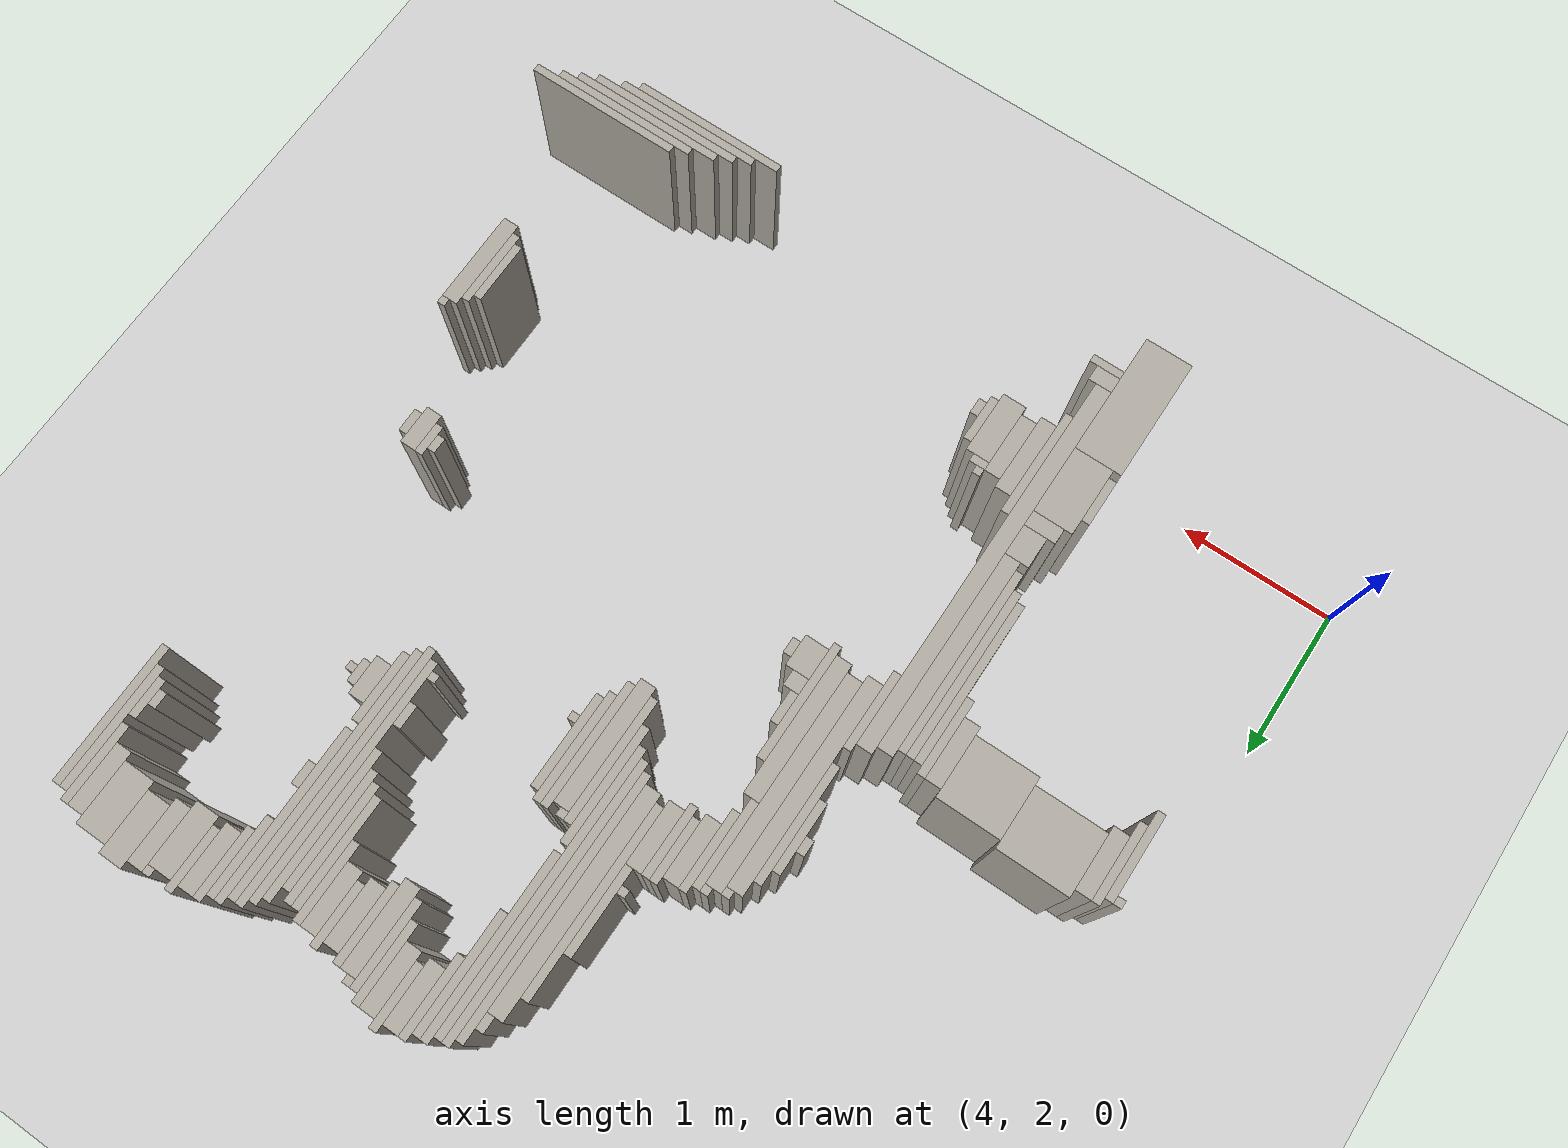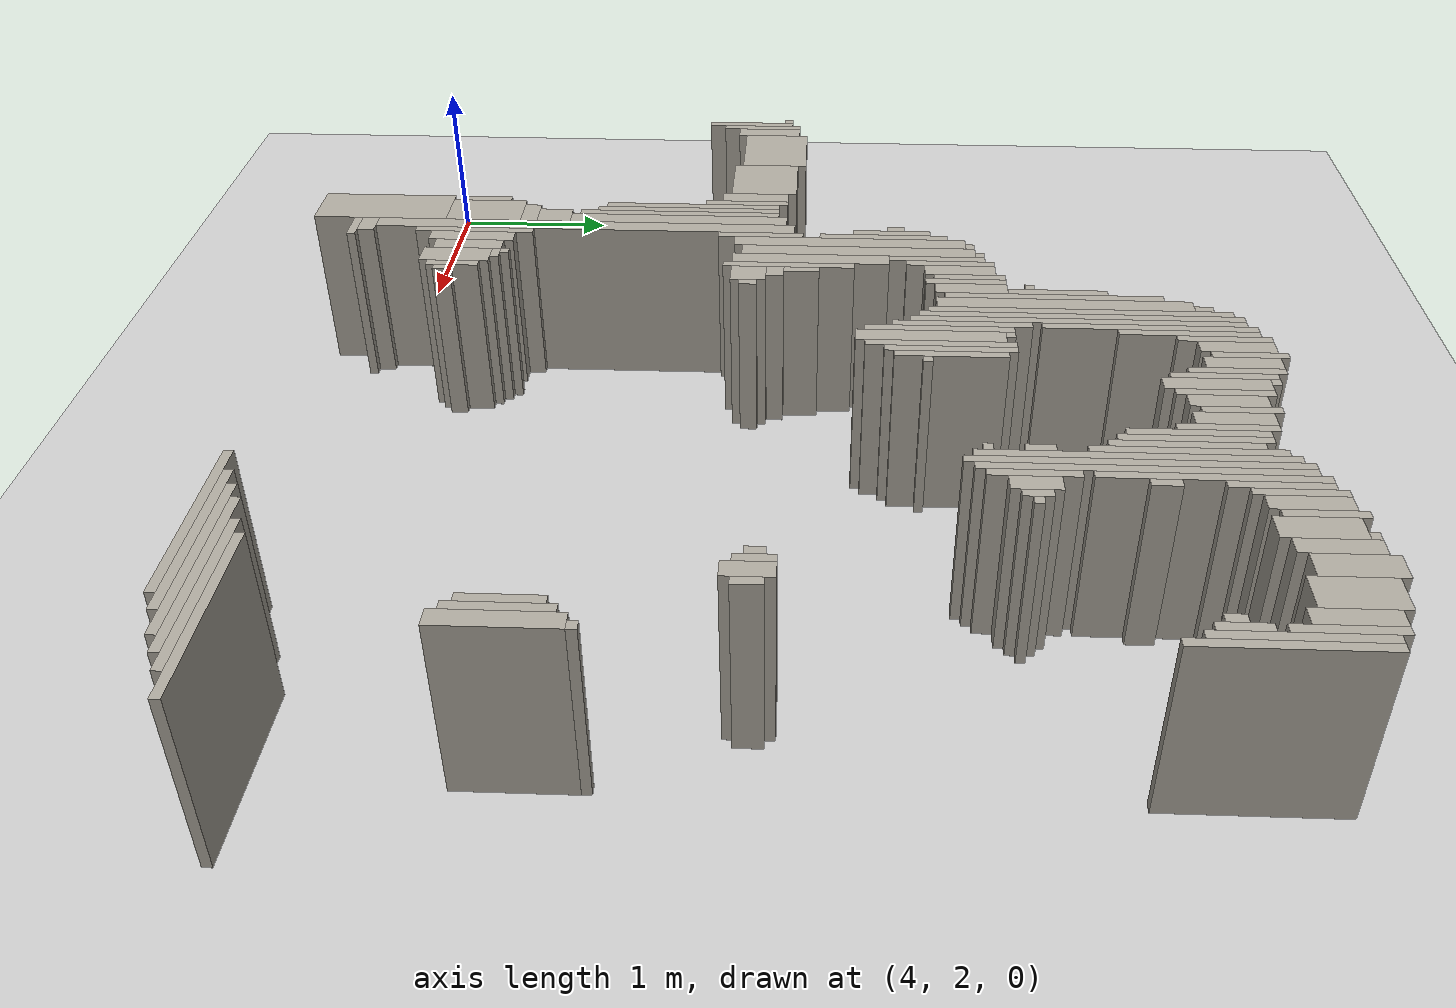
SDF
<sdf version="1.6">
 <world name="fr079_office">
  <include><uri>model://sun</uri></include>
  <include><uri>model://ground_plane</uri></include>
  <model name="fr079_office_walls">
   <static>true</static>
   <link name="w2047">
    <pose>5.652 1.944 0.500 0 0 0</pose>
    <collision name="c"><geometry><box><size>0.300 0.800 1.000</size></box></geometry></collision>
    <visual name="v">
     <geometry><box><size>0.300 0.800 1.000</size></box></geometry>
     <material><ambient>0.68 0.66 0.62 1</ambient><diffuse>0.68 0.66 0.62 1</diffuse></material>
    </visual>
   </link>
   <link name="w2118">
    <pose>5.902 1.819 0.500 0 0 0</pose>
    <collision name="c"><geometry><box><size>0.200 0.050 1.000</size></box></geometry></collision>
    <visual name="v">
     <geometry><box><size>0.200 0.050 1.000</size></box></geometry>
     <material><ambient>0.68 0.66 0.62 1</ambient><diffuse>0.68 0.66 0.62 1</diffuse></material>
    </visual>
   </link>
   <link name="w2119">
    <pose>8.652 1.819 0.500 0 0 0</pose>
    <collision name="c"><geometry><box><size>1.000 0.050 1.000</size></box></geometry></collision>
    <visual name="v">
     <geometry><box><size>1.000 0.050 1.000</size></box></geometry>
     <material><ambient>0.68 0.66 0.62 1</ambient><diffuse>0.68 0.66 0.62 1</diffuse></material>
    </visual>
   </link>
   <link name="w2141">
    <pose>5.877 1.894 0.500 0 0 0</pose>
    <collision name="c"><geometry><box><size>0.150 0.100 1.000</size></box></geometry></collision>
    <visual name="v">
     <geometry><box><size>0.150 0.100 1.000</size></box></geometry>
     <material><ambient>0.68 0.66 0.62 1</ambient><diffuse>0.68 0.66 0.62 1</diffuse></material>
    </visual>
   </link>
   <link name="w2142">
    <pose>8.777 1.869 0.500 0 0 0</pose>
    <collision name="c"><geometry><box><size>0.950 0.050 1.000</size></box></geometry></collision>
    <visual name="v">
     <geometry><box><size>0.950 0.050 1.000</size></box></geometry>
     <material><ambient>0.68 0.66 0.62 1</ambient><diffuse>0.68 0.66 0.62 1</diffuse></material>
    </visual>
   </link>
   <link name="w2153">
    <pose>8.902 1.919 0.500 0 0 0</pose>
    <collision name="c"><geometry><box><size>1.000 0.050 1.000</size></box></geometry></collision>
    <visual name="v">
     <geometry><box><size>1.000 0.050 1.000</size></box></geometry>
     <material><ambient>0.68 0.66 0.62 1</ambient><diffuse>0.68 0.66 0.62 1</diffuse></material>
    </visual>
   </link>
   <link name="w2164">
    <pose>5.852 3.194 0.500 0 0 0</pose>
    <collision name="c"><geometry><box><size>0.100 2.500 1.000</size></box></geometry></collision>
    <visual name="v">
     <geometry><box><size>0.100 2.500 1.000</size></box></geometry>
     <material><ambient>0.68 0.66 0.62 1</ambient><diffuse>0.68 0.66 0.62 1</diffuse></material>
    </visual>
   </link>
   <link name="w2165">
    <pose>9.002 1.969 0.500 0 0 0</pose>
    <collision name="c"><geometry><box><size>1.000 0.050 1.000</size></box></geometry></collision>
    <visual name="v">
     <geometry><box><size>1.000 0.050 1.000</size></box></geometry>
     <material><ambient>0.68 0.66 0.62 1</ambient><diffuse>0.68 0.66 0.62 1</diffuse></material>
    </visual>
   </link>
   <link name="w2178">
    <pose>9.127 2.019 0.500 0 0 0</pose>
    <collision name="c"><geometry><box><size>0.950 0.050 1.000</size></box></geometry></collision>
    <visual name="v">
     <geometry><box><size>0.950 0.050 1.000</size></box></geometry>
     <material><ambient>0.68 0.66 0.62 1</ambient><diffuse>0.68 0.66 0.62 1</diffuse></material>
    </visual>
   </link>
   <link name="w2189">
    <pose>9.252 2.069 0.500 0 0 0</pose>
    <collision name="c"><geometry><box><size>1.000 0.050 1.000</size></box></geometry></collision>
    <visual name="v">
     <geometry><box><size>1.000 0.050 1.000</size></box></geometry>
     <material><ambient>0.68 0.66 0.62 1</ambient><diffuse>0.68 0.66 0.62 1</diffuse></material>
    </visual>
   </link>
   <link name="w2215">
    <pose>5.927 2.544 0.500 0 0 0</pose>
    <collision name="c"><geometry><box><size>0.050 0.700 1.000</size></box></geometry></collision>
    <visual name="v">
     <geometry><box><size>0.050 0.700 1.000</size></box></geometry>
     <material><ambient>0.68 0.66 0.62 1</ambient><diffuse>0.68 0.66 0.62 1</diffuse></material>
    </visual>
   </link>
   <link name="w2235">
    <pose>6.002 2.544 0.500 0 0 0</pose>
    <collision name="c"><geometry><box><size>0.100 0.500 1.000</size></box></geometry></collision>
    <visual name="v">
     <geometry><box><size>0.100 0.500 1.000</size></box></geometry>
     <material><ambient>0.68 0.66 0.62 1</ambient><diffuse>0.68 0.66 0.62 1</diffuse></material>
    </visual>
   </link>
   <link name="w2236">
    <pose>6.227 2.494 0.500 0 0 0</pose>
    <collision name="c"><geometry><box><size>0.150 0.400 1.000</size></box></geometry></collision>
    <visual name="v">
     <geometry><box><size>0.150 0.400 1.000</size></box></geometry>
     <material><ambient>0.68 0.66 0.62 1</ambient><diffuse>0.68 0.66 0.62 1</diffuse></material>
    </visual>
   </link>
   <link name="w2247">
    <pose>5.677 2.569 0.500 0 0 0</pose>
    <collision name="c"><geometry><box><size>0.250 0.450 1.000</size></box></geometry></collision>
    <visual name="v">
     <geometry><box><size>0.250 0.450 1.000</size></box></geometry>
     <material><ambient>0.68 0.66 0.62 1</ambient><diffuse>0.68 0.66 0.62 1</diffuse></material>
    </visual>
   </link>
   <link name="w2248">
    <pose>6.102 2.544 0.500 0 0 0</pose>
    <collision name="c"><geometry><box><size>0.100 0.400 1.000</size></box></geometry></collision>
    <visual name="v">
     <geometry><box><size>0.100 0.400 1.000</size></box></geometry>
     <material><ambient>0.68 0.66 0.62 1</ambient><diffuse>0.68 0.66 0.62 1</diffuse></material>
    </visual>
   </link>
   <link name="w2249">
    <pose>6.327 2.494 0.500 0 0 0</pose>
    <collision name="c"><geometry><box><size>0.050 0.300 1.000</size></box></geometry></collision>
    <visual name="v">
     <geometry><box><size>0.050 0.300 1.000</size></box></geometry>
     <material><ambient>0.68 0.66 0.62 1</ambient><diffuse>0.68 0.66 0.62 1</diffuse></material>
    </visual>
   </link>
   <link name="w2256">
    <pose>5.527 2.544 0.500 0 0 0</pose>
    <collision name="c"><geometry><box><size>0.050 0.300 1.000</size></box></geometry></collision>
    <visual name="v">
     <geometry><box><size>0.050 0.300 1.000</size></box></geometry>
     <material><ambient>0.68 0.66 0.62 1</ambient><diffuse>0.68 0.66 0.62 1</diffuse></material>
    </visual>
   </link>
   <link name="w2257">
    <pose>6.377 2.444 0.500 0 0 0</pose>
    <collision name="c"><geometry><box><size>0.050 0.100 1.000</size></box></geometry></collision>
    <visual name="v">
     <geometry><box><size>0.050 0.100 1.000</size></box></geometry>
     <material><ambient>0.68 0.66 0.62 1</ambient><diffuse>0.68 0.66 0.62 1</diffuse></material>
    </visual>
   </link>
   <link name="w2335">
    <pose>6.202 2.719 0.500 0 0 0</pose>
    <collision name="c"><geometry><box><size>0.100 0.050 1.000</size></box></geometry></collision>
    <visual name="v">
     <geometry><box><size>0.100 0.050 1.000</size></box></geometry>
     <material><ambient>0.68 0.66 0.62 1</ambient><diffuse>0.68 0.66 0.62 1</diffuse></material>
    </visual>
   </link>
   <link name="w2344">
    <pose>6.177 2.769 0.500 0 0 0</pose>
    <collision name="c"><geometry><box><size>0.050 0.050 1.000</size></box></geometry></collision>
    <visual name="v">
     <geometry><box><size>0.050 0.050 1.000</size></box></geometry>
     <material><ambient>0.68 0.66 0.62 1</ambient><diffuse>0.68 0.66 0.62 1</diffuse></material>
    </visual>
   </link>
   <link name="w2352">
    <pose>5.702 2.844 0.500 0 0 0</pose>
    <collision name="c"><geometry><box><size>0.200 0.100 1.000</size></box></geometry></collision>
    <visual name="v">
     <geometry><box><size>0.200 0.100 1.000</size></box></geometry>
     <material><ambient>0.68 0.66 0.62 1</ambient><diffuse>0.68 0.66 0.62 1</diffuse></material>
    </visual>
   </link>
   <link name="w2376">
    <pose>5.727 2.994 0.500 0 0 0</pose>
    <collision name="c"><geometry><box><size>0.150 0.200 1.000</size></box></geometry></collision>
    <visual name="v">
     <geometry><box><size>0.150 0.200 1.000</size></box></geometry>
     <material><ambient>0.68 0.66 0.62 1</ambient><diffuse>0.68 0.66 0.62 1</diffuse></material>
    </visual>
   </link>
   <link name="w2398">
    <pose>9.252 3.294 0.500 0 0 0</pose>
    <collision name="c"><geometry><box><size>0.100 0.600 1.000</size></box></geometry></collision>
    <visual name="v">
     <geometry><box><size>0.100 0.600 1.000</size></box></geometry>
     <material><ambient>0.68 0.66 0.62 1</ambient><diffuse>0.68 0.66 0.62 1</diffuse></material>
    </visual>
   </link>
   <link name="w2415">
    <pose>9.177 3.294 0.500 0 0 0</pose>
    <collision name="c"><geometry><box><size>0.050 0.500 1.000</size></box></geometry></collision>
    <visual name="v">
     <geometry><box><size>0.050 0.500 1.000</size></box></geometry>
     <material><ambient>0.68 0.66 0.62 1</ambient><diffuse>0.68 0.66 0.62 1</diffuse></material>
    </visual>
   </link>
   <link name="w2431">
    <pose>5.752 3.744 0.500 0 0 0</pose>
    <collision name="c"><geometry><box><size>0.100 1.300 1.000</size></box></geometry></collision>
    <visual name="v">
     <geometry><box><size>0.100 1.300 1.000</size></box></geometry>
     <material><ambient>0.68 0.66 0.62 1</ambient><diffuse>0.68 0.66 0.62 1</diffuse></material>
    </visual>
   </link>
   <link name="w2432">
    <pose>9.127 3.294 0.500 0 0 0</pose>
    <collision name="c"><geometry><box><size>0.050 0.400 1.000</size></box></geometry></collision>
    <visual name="v">
     <geometry><box><size>0.050 0.400 1.000</size></box></geometry>
     <material><ambient>0.68 0.66 0.62 1</ambient><diffuse>0.68 0.66 0.62 1</diffuse></material>
    </visual>
   </link>
   <link name="w2445">
    <pose>5.677 3.744 0.500 0 0 0</pose>
    <collision name="c"><geometry><box><size>0.050 1.200 1.000</size></box></geometry></collision>
    <visual name="v">
     <geometry><box><size>0.050 1.200 1.000</size></box></geometry>
     <material><ambient>0.68 0.66 0.62 1</ambient><diffuse>0.68 0.66 0.62 1</diffuse></material>
    </visual>
   </link>
   <link name="w2474">
    <pose>5.627 3.794 0.500 0 0 0</pose>
    <collision name="c"><geometry><box><size>0.050 1.100 1.000</size></box></geometry></collision>
    <visual name="v">
     <geometry><box><size>0.050 1.100 1.000</size></box></geometry>
     <material><ambient>0.68 0.66 0.62 1</ambient><diffuse>0.68 0.66 0.62 1</diffuse></material>
    </visual>
   </link>
   <link name="w2486">
    <pose>5.577 3.819 0.500 0 0 0</pose>
    <collision name="c"><geometry><box><size>0.050 1.050 1.000</size></box></geometry></collision>
    <visual name="v">
     <geometry><box><size>0.050 1.050 1.000</size></box></geometry>
     <material><ambient>0.68 0.66 0.62 1</ambient><diffuse>0.68 0.66 0.62 1</diffuse></material>
    </visual>
   </link>
   <link name="w2545">
    <pose>9.277 3.619 0.500 0 0 0</pose>
    <collision name="c"><geometry><box><size>0.050 0.050 1.000</size></box></geometry></collision>
    <visual name="v">
     <geometry><box><size>0.050 0.050 1.000</size></box></geometry>
     <material><ambient>0.68 0.66 0.62 1</ambient><diffuse>0.68 0.66 0.62 1</diffuse></material>
    </visual>
   </link>
   <link name="w2586">
    <pose>4.377 4.119 0.500 0 0 0</pose>
    <collision name="c"><geometry><box><size>0.050 0.550 1.000</size></box></geometry></collision>
    <visual name="v">
     <geometry><box><size>0.050 0.550 1.000</size></box></geometry>
     <material><ambient>0.68 0.66 0.62 1</ambient><diffuse>0.68 0.66 0.62 1</diffuse></material>
    </visual>
   </link>
   <link name="w2593">
    <pose>5.527 4.144 0.500 0 0 0</pose>
    <collision name="c"><geometry><box><size>0.050 0.500 1.000</size></box></geometry></collision>
    <visual name="v">
     <geometry><box><size>0.050 0.500 1.000</size></box></geometry>
     <material><ambient>0.68 0.66 0.62 1</ambient><diffuse>0.68 0.66 0.62 1</diffuse></material>
    </visual>
   </link>
   <link name="w2604">
    <pose>4.427 4.194 0.500 0 0 0</pose>
    <collision name="c"><geometry><box><size>0.050 0.500 1.000</size></box></geometry></collision>
    <visual name="v">
     <geometry><box><size>0.050 0.500 1.000</size></box></geometry>
     <material><ambient>0.68 0.66 0.62 1</ambient><diffuse>0.68 0.66 0.62 1</diffuse></material>
    </visual>
   </link>
   <link name="w2613">
    <pose>5.452 4.194 0.500 0 0 0</pose>
    <collision name="c"><geometry><box><size>0.100 0.400 1.000</size></box></geometry></collision>
    <visual name="v">
     <geometry><box><size>0.100 0.400 1.000</size></box></geometry>
     <material><ambient>0.68 0.66 0.62 1</ambient><diffuse>0.68 0.66 0.62 1</diffuse></material>
    </visual>
   </link>
   <link name="w2614">
    <pose>5.927 4.244 0.500 0 0 0</pose>
    <collision name="c"><geometry><box><size>0.050 0.500 1.000</size></box></geometry></collision>
    <visual name="v">
     <geometry><box><size>0.050 0.500 1.000</size></box></geometry>
     <material><ambient>0.68 0.66 0.62 1</ambient><diffuse>0.68 0.66 0.62 1</diffuse></material>
    </visual>
   </link>
   <link name="w2624">
    <pose>4.502 4.244 0.500 0 0 0</pose>
    <collision name="c"><geometry><box><size>0.100 0.400 1.000</size></box></geometry></collision>
    <visual name="v">
     <geometry><box><size>0.100 0.400 1.000</size></box></geometry>
     <material><ambient>0.68 0.66 0.62 1</ambient><diffuse>0.68 0.66 0.62 1</diffuse></material>
    </visual>
   </link>
   <link name="w2625">
    <pose>5.202 4.244 0.500 0 0 0</pose>
    <collision name="c"><geometry><box><size>0.400 0.400 1.000</size></box></geometry></collision>
    <visual name="v">
     <geometry><box><size>0.400 0.400 1.000</size></box></geometry>
     <material><ambient>0.68 0.66 0.62 1</ambient><diffuse>0.68 0.66 0.62 1</diffuse></material>
    </visual>
   </link>
   <link name="w2626">
    <pose>6.277 4.419 0.500 0 0 0</pose>
    <collision name="c"><geometry><box><size>0.050 0.750 1.000</size></box></geometry></collision>
    <visual name="v">
     <geometry><box><size>0.050 0.750 1.000</size></box></geometry>
     <material><ambient>0.68 0.66 0.62 1</ambient><diffuse>0.68 0.66 0.62 1</diffuse></material>
    </visual>
   </link>
   <link name="w2637">
    <pose>4.777 4.294 0.500 0 0 0</pose>
    <collision name="c"><geometry><box><size>0.450 0.400 1.000</size></box></geometry></collision>
    <visual name="v">
     <geometry><box><size>0.450 0.400 1.000</size></box></geometry>
     <material><ambient>0.68 0.66 0.62 1</ambient><diffuse>0.68 0.66 0.62 1</diffuse></material>
    </visual>
   </link>
   <link name="w2638">
    <pose>6.002 4.769 0.500 0 0 0</pose>
    <collision name="c"><geometry><box><size>0.100 1.350 1.000</size></box></geometry></collision>
    <visual name="v">
     <geometry><box><size>0.100 1.350 1.000</size></box></geometry>
     <material><ambient>0.68 0.66 0.62 1</ambient><diffuse>0.68 0.66 0.62 1</diffuse></material>
    </visual>
   </link>
   <link name="w2639">
    <pose>6.202 4.544 0.500 0 0 0</pose>
    <collision name="c"><geometry><box><size>0.100 0.900 1.000</size></box></geometry></collision>
    <visual name="v">
     <geometry><box><size>0.100 0.900 1.000</size></box></geometry>
     <material><ambient>0.68 0.66 0.62 1</ambient><diffuse>0.68 0.66 0.62 1</diffuse></material>
    </visual>
   </link>
   <link name="w2640">
    <pose>6.377 4.194 0.500 0 0 0</pose>
    <collision name="c"><geometry><box><size>0.150 0.200 1.000</size></box></geometry></collision>
    <visual name="v">
     <geometry><box><size>0.150 0.200 1.000</size></box></geometry>
     <material><ambient>0.68 0.66 0.62 1</ambient><diffuse>0.68 0.66 0.62 1</diffuse></material>
    </visual>
   </link>
   <link name="w2652">
    <pose>6.102 4.819 0.500 0 0 0</pose>
    <collision name="c"><geometry><box><size>0.100 1.350 1.000</size></box></geometry></collision>
    <visual name="v">
     <geometry><box><size>0.100 1.350 1.000</size></box></geometry>
     <material><ambient>0.68 0.66 0.62 1</ambient><diffuse>0.68 0.66 0.62 1</diffuse></material>
    </visual>
   </link>
   <link name="w2653">
    <pose>6.477 4.194 0.500 0 0 0</pose>
    <collision name="c"><geometry><box><size>0.050 0.100 1.000</size></box></geometry></collision>
    <visual name="v">
     <geometry><box><size>0.050 0.100 1.000</size></box></geometry>
     <material><ambient>0.68 0.66 0.62 1</ambient><diffuse>0.68 0.66 0.62 1</diffuse></material>
    </visual>
   </link>
   <link name="w2668">
    <pose>8.902 4.319 0.500 0 0 0</pose>
    <collision name="c"><geometry><box><size>0.100 0.250 1.000</size></box></geometry></collision>
    <visual name="v">
     <geometry><box><size>0.100 0.250 1.000</size></box></geometry>
     <material><ambient>0.68 0.66 0.62 1</ambient><diffuse>0.68 0.66 0.62 1</diffuse></material>
    </visual>
   </link>
   <link name="w2678">
    <pose>8.827 4.344 0.500 0 0 0</pose>
    <collision name="c"><geometry><box><size>0.050 0.200 1.000</size></box></geometry></collision>
    <visual name="v">
     <geometry><box><size>0.050 0.200 1.000</size></box></geometry>
     <material><ambient>0.68 0.66 0.62 1</ambient><diffuse>0.68 0.66 0.62 1</diffuse></material>
    </visual>
   </link>
   <link name="w2679">
    <pose>8.977 4.319 0.500 0 0 0</pose>
    <collision name="c"><geometry><box><size>0.050 0.150 1.000</size></box></geometry></collision>
    <visual name="v">
     <geometry><box><size>0.050 0.150 1.000</size></box></geometry>
     <material><ambient>0.68 0.66 0.62 1</ambient><diffuse>0.68 0.66 0.62 1</diffuse></material>
    </visual>
   </link>
   <link name="w2684">
    <pose>6.352 4.344 0.500 0 0 0</pose>
    <collision name="c"><geometry><box><size>0.100 0.100 1.000</size></box></geometry></collision>
    <visual name="v">
     <geometry><box><size>0.100 0.100 1.000</size></box></geometry>
     <material><ambient>0.68 0.66 0.62 1</ambient><diffuse>0.68 0.66 0.62 1</diffuse></material>
    </visual>
   </link>
   <link name="w2685">
    <pose>8.777 4.344 0.500 0 0 0</pose>
    <collision name="c"><geometry><box><size>0.050 0.100 1.000</size></box></geometry></collision>
    <visual name="v">
     <geometry><box><size>0.050 0.100 1.000</size></box></geometry>
     <material><ambient>0.68 0.66 0.62 1</ambient><diffuse>0.68 0.66 0.62 1</diffuse></material>
    </visual>
   </link>
   <link name="w2691">
    <pose>4.327 4.369 0.500 0 0 0</pose>
    <collision name="c"><geometry><box><size>0.050 0.050 1.000</size></box></geometry></collision>
    <visual name="v">
     <geometry><box><size>0.050 0.050 1.000</size></box></geometry>
     <material><ambient>0.68 0.66 0.62 1</ambient><diffuse>0.68 0.66 0.62 1</diffuse></material>
    </visual>
   </link>
   <link name="w2698">
    <pose>6.327 4.494 0.500 0 0 0</pose>
    <collision name="c"><geometry><box><size>0.050 0.200 1.000</size></box></geometry></collision>
    <visual name="v">
     <geometry><box><size>0.050 0.200 1.000</size></box></geometry>
     <material><ambient>0.68 0.66 0.62 1</ambient><diffuse>0.68 0.66 0.62 1</diffuse></material>
    </visual>
   </link>
   <link name="w2728">
    <pose>5.927 4.969 0.500 0 0 0</pose>
    <collision name="c"><geometry><box><size>0.050 0.750 1.000</size></box></geometry></collision>
    <visual name="v">
     <geometry><box><size>0.050 0.750 1.000</size></box></geometry>
     <material><ambient>0.68 0.66 0.62 1</ambient><diffuse>0.68 0.66 0.62 1</diffuse></material>
    </visual>
   </link>
   <link name="w2762">
    <pose>5.877 5.019 0.500 0 0 0</pose>
    <collision name="c"><geometry><box><size>0.050 0.450 1.000</size></box></geometry></collision>
    <visual name="v">
     <geometry><box><size>0.050 0.450 1.000</size></box></geometry>
     <material><ambient>0.68 0.66 0.62 1</ambient><diffuse>0.68 0.66 0.62 1</diffuse></material>
    </visual>
   </link>
   <link name="w2763">
    <pose>7.002 5.194 0.500 0 0 0</pose>
    <collision name="c"><geometry><box><size>0.100 0.800 1.000</size></box></geometry></collision>
    <visual name="v">
     <geometry><box><size>0.100 0.800 1.000</size></box></geometry>
     <material><ambient>0.68 0.66 0.62 1</ambient><diffuse>0.68 0.66 0.62 1</diffuse></material>
    </visual>
   </link>
   <link name="w2771">
    <pose>6.927 5.244 0.500 0 0 0</pose>
    <collision name="c"><geometry><box><size>0.050 0.800 1.000</size></box></geometry></collision>
    <visual name="v">
     <geometry><box><size>0.050 0.800 1.000</size></box></geometry>
     <material><ambient>0.68 0.66 0.62 1</ambient><diffuse>0.68 0.66 0.62 1</diffuse></material>
    </visual>
   </link>
   <link name="w2772">
    <pose>7.077 5.244 0.500 0 0 0</pose>
    <collision name="c"><geometry><box><size>0.050 0.800 1.000</size></box></geometry></collision>
    <visual name="v">
     <geometry><box><size>0.050 0.800 1.000</size></box></geometry>
     <material><ambient>0.68 0.66 0.62 1</ambient><diffuse>0.68 0.66 0.62 1</diffuse></material>
    </visual>
   </link>
   <link name="w2799">
    <pose>7.127 5.294 0.500 0 0 0</pose>
    <collision name="c"><geometry><box><size>0.050 0.700 1.000</size></box></geometry></collision>
    <visual name="v">
     <geometry><box><size>0.050 0.700 1.000</size></box></geometry>
     <material><ambient>0.68 0.66 0.62 1</ambient><diffuse>0.68 0.66 0.62 1</diffuse></material>
    </visual>
   </link>
   <link name="w2808">
    <pose>5.827 5.044 0.500 0 0 0</pose>
    <collision name="c"><geometry><box><size>0.050 0.100 1.000</size></box></geometry></collision>
    <visual name="v">
     <geometry><box><size>0.050 0.100 1.000</size></box></geometry>
     <material><ambient>0.68 0.66 0.62 1</ambient><diffuse>0.68 0.66 0.62 1</diffuse></material>
    </visual>
   </link>
   <link name="w2809">
    <pose>6.177 5.269 0.500 0 0 0</pose>
    <collision name="c"><geometry><box><size>0.050 0.550 1.000</size></box></geometry></collision>
    <visual name="v">
     <geometry><box><size>0.050 0.550 1.000</size></box></geometry>
     <material><ambient>0.68 0.66 0.62 1</ambient><diffuse>0.68 0.66 0.62 1</diffuse></material>
    </visual>
   </link>
   <link name="w2810">
    <pose>6.877 5.369 0.500 0 0 0</pose>
    <collision name="c"><geometry><box><size>0.050 0.750 1.000</size></box></geometry></collision>
    <visual name="v">
     <geometry><box><size>0.050 0.750 1.000</size></box></geometry>
     <material><ambient>0.68 0.66 0.62 1</ambient><diffuse>0.68 0.66 0.62 1</diffuse></material>
    </visual>
   </link>
   <link name="w2811">
    <pose>7.177 5.294 0.500 0 0 0</pose>
    <collision name="c"><geometry><box><size>0.050 0.600 1.000</size></box></geometry></collision>
    <visual name="v">
     <geometry><box><size>0.050 0.600 1.000</size></box></geometry>
     <material><ambient>0.68 0.66 0.62 1</ambient><diffuse>0.68 0.66 0.62 1</diffuse></material>
    </visual>
   </link>
   <link name="w2827">
    <pose>6.227 5.344 0.500 0 0 0</pose>
    <collision name="c"><geometry><box><size>0.050 0.500 1.000</size></box></geometry></collision>
    <visual name="v">
     <geometry><box><size>0.050 0.500 1.000</size></box></geometry>
     <material><ambient>0.68 0.66 0.62 1</ambient><diffuse>0.68 0.66 0.62 1</diffuse></material>
    </visual>
   </link>
   <link name="w2828">
    <pose>6.827 5.994 0.500 0 0 0</pose>
    <collision name="c"><geometry><box><size>0.050 1.800 1.000</size></box></geometry></collision>
    <visual name="v">
     <geometry><box><size>0.050 1.800 1.000</size></box></geometry>
     <material><ambient>0.68 0.66 0.62 1</ambient><diffuse>0.68 0.66 0.62 1</diffuse></material>
    </visual>
   </link>
   <link name="w2837">
    <pose>6.777 6.019 0.500 0 0 0</pose>
    <collision name="c"><geometry><box><size>0.050 1.750 1.000</size></box></geometry></collision>
    <visual name="v">
     <geometry><box><size>0.050 1.750 1.000</size></box></geometry>
     <material><ambient>0.68 0.66 0.62 1</ambient><diffuse>0.68 0.66 0.62 1</diffuse></material>
    </visual>
   </link>
   <link name="w2838">
    <pose>7.227 5.169 0.500 0 0 0</pose>
    <collision name="c"><geometry><box><size>0.050 0.050 1.000</size></box></geometry></collision>
    <visual name="v">
     <geometry><box><size>0.050 0.050 1.000</size></box></geometry>
     <material><ambient>0.68 0.66 0.62 1</ambient><diffuse>0.68 0.66 0.62 1</diffuse></material>
    </visual>
   </link>
   <link name="w2844">
    <pose>6.302 5.394 0.500 0 0 0</pose>
    <collision name="c"><geometry><box><size>0.100 0.400 1.000</size></box></geometry></collision>
    <visual name="v">
     <geometry><box><size>0.100 0.400 1.000</size></box></geometry>
     <material><ambient>0.68 0.66 0.62 1</ambient><diffuse>0.68 0.66 0.62 1</diffuse></material>
    </visual>
   </link>
   <link name="w2845">
    <pose>6.427 5.419 0.500 0 0 0</pose>
    <collision name="c"><geometry><box><size>0.050 0.450 1.000</size></box></geometry></collision>
    <visual name="v">
     <geometry><box><size>0.050 0.450 1.000</size></box></geometry>
     <material><ambient>0.68 0.66 0.62 1</ambient><diffuse>0.68 0.66 0.62 1</diffuse></material>
    </visual>
   </link>
   <link name="w2846">
    <pose>6.727 6.019 0.500 0 0 0</pose>
    <collision name="c"><geometry><box><size>0.050 1.650 1.000</size></box></geometry></collision>
    <visual name="v">
     <geometry><box><size>0.050 1.650 1.000</size></box></geometry>
     <material><ambient>0.68 0.66 0.62 1</ambient><diffuse>0.68 0.66 0.62 1</diffuse></material>
    </visual>
   </link>
   <link name="w2856">
    <pose>6.377 5.444 0.500 0 0 0</pose>
    <collision name="c"><geometry><box><size>0.050 0.400 1.000</size></box></geometry></collision>
    <visual name="v">
     <geometry><box><size>0.050 0.400 1.000</size></box></geometry>
     <material><ambient>0.68 0.66 0.62 1</ambient><diffuse>0.68 0.66 0.62 1</diffuse></material>
    </visual>
   </link>
   <link name="w2857">
    <pose>6.502 5.444 0.500 0 0 0</pose>
    <collision name="c"><geometry><box><size>0.100 0.400 1.000</size></box></geometry></collision>
    <visual name="v">
     <geometry><box><size>0.100 0.400 1.000</size></box></geometry>
     <material><ambient>0.68 0.66 0.62 1</ambient><diffuse>0.68 0.66 0.62 1</diffuse></material>
    </visual>
   </link>
   <link name="w2858">
    <pose>6.652 5.944 0.500 0 0 0</pose>
    <collision name="c"><geometry><box><size>0.100 1.400 1.000</size></box></geometry></collision>
    <visual name="v">
     <geometry><box><size>0.100 1.400 1.000</size></box></geometry>
     <material><ambient>0.68 0.66 0.62 1</ambient><diffuse>0.68 0.66 0.62 1</diffuse></material>
    </visual>
   </link>
   <link name="w2870">
    <pose>6.577 5.894 0.500 0 0 0</pose>
    <collision name="c"><geometry><box><size>0.050 1.200 1.000</size></box></geometry></collision>
    <visual name="v">
     <geometry><box><size>0.050 1.200 1.000</size></box></geometry>
     <material><ambient>0.68 0.66 0.62 1</ambient><diffuse>0.68 0.66 0.62 1</diffuse></material>
    </visual>
   </link>
   <link name="w2871">
    <pose>8.077 6.119 0.500 0 0 0</pose>
    <collision name="c"><geometry><box><size>0.050 1.650 1.000</size></box></geometry></collision>
    <visual name="v">
     <geometry><box><size>0.050 1.650 1.000</size></box></geometry>
     <material><ambient>0.68 0.66 0.62 1</ambient><diffuse>0.68 0.66 0.62 1</diffuse></material>
    </visual>
   </link>
   <link name="w2885">
    <pose>8.027 6.119 0.500 0 0 0</pose>
    <collision name="c"><geometry><box><size>0.050 1.550 1.000</size></box></geometry></collision>
    <visual name="v">
     <geometry><box><size>0.050 1.550 1.000</size></box></geometry>
     <material><ambient>0.68 0.66 0.62 1</ambient><diffuse>0.68 0.66 0.62 1</diffuse></material>
    </visual>
   </link>
   <link name="w2886">
    <pose>8.127 6.144 0.500 0 0 0</pose>
    <collision name="c"><geometry><box><size>0.050 1.600 1.000</size></box></geometry></collision>
    <visual name="v">
     <geometry><box><size>0.050 1.600 1.000</size></box></geometry>
     <material><ambient>0.68 0.66 0.62 1</ambient><diffuse>0.68 0.66 0.62 1</diffuse></material>
    </visual>
   </link>
   <link name="w2901">
    <pose>7.977 5.419 0.500 0 0 0</pose>
    <collision name="c"><geometry><box><size>0.050 0.050 1.000</size></box></geometry></collision>
    <visual name="v">
     <geometry><box><size>0.050 0.050 1.000</size></box></geometry>
     <material><ambient>0.68 0.66 0.62 1</ambient><diffuse>0.68 0.66 0.62 1</diffuse></material>
    </visual>
   </link>
   <link name="w2902">
    <pose>8.177 5.619 0.500 0 0 0</pose>
    <collision name="c"><geometry><box><size>0.050 0.450 1.000</size></box></geometry></collision>
    <visual name="v">
     <geometry><box><size>0.050 0.450 1.000</size></box></geometry>
     <material><ambient>0.68 0.66 0.62 1</ambient><diffuse>0.68 0.66 0.62 1</diffuse></material>
    </visual>
   </link>
   <link name="w2908">
    <pose>6.027 5.469 0.500 0 0 0</pose>
    <collision name="c"><geometry><box><size>0.050 0.050 1.000</size></box></geometry></collision>
    <visual name="v">
     <geometry><box><size>0.050 0.050 1.000</size></box></geometry>
     <material><ambient>0.68 0.66 0.62 1</ambient><diffuse>0.68 0.66 0.62 1</diffuse></material>
    </visual>
   </link>
   <link name="w2923">
    <pose>6.127 5.519 0.500 0 0 0</pose>
    <collision name="c"><geometry><box><size>0.050 0.050 1.000</size></box></geometry></collision>
    <visual name="v">
     <geometry><box><size>0.050 0.050 1.000</size></box></geometry>
     <material><ambient>0.68 0.66 0.62 1</ambient><diffuse>0.68 0.66 0.62 1</diffuse></material>
    </visual>
   </link>
   <link name="w2924">
    <pose>8.252 5.619 0.500 0 0 0</pose>
    <collision name="c"><geometry><box><size>0.100 0.250 1.000</size></box></geometry></collision>
    <visual name="v">
     <geometry><box><size>0.100 0.250 1.000</size></box></geometry>
     <material><ambient>0.68 0.66 0.62 1</ambient><diffuse>0.68 0.66 0.62 1</diffuse></material>
    </visual>
   </link>
   <link name="w2933">
    <pose>8.327 5.619 0.500 0 0 0</pose>
    <collision name="c"><geometry><box><size>0.050 0.150 1.000</size></box></geometry></collision>
    <visual name="v">
     <geometry><box><size>0.050 0.150 1.000</size></box></geometry>
     <material><ambient>0.68 0.66 0.62 1</ambient><diffuse>0.68 0.66 0.62 1</diffuse></material>
    </visual>
   </link>
   <link name="w2946">
    <pose>6.977 5.619 0.500 0 0 0</pose>
    <collision name="c"><geometry><box><size>0.050 0.050 1.000</size></box></geometry></collision>
    <visual name="v">
     <geometry><box><size>0.050 0.050 1.000</size></box></geometry>
     <material><ambient>0.68 0.66 0.62 1</ambient><diffuse>0.68 0.66 0.62 1</diffuse></material>
    </visual>
   </link>
   <link name="w2947">
    <pose>7.977 5.669 0.500 0 0 0</pose>
    <collision name="c"><geometry><box><size>0.050 0.150 1.000</size></box></geometry></collision>
    <visual name="v">
     <geometry><box><size>0.050 0.150 1.000</size></box></geometry>
     <material><ambient>0.68 0.66 0.62 1</ambient><diffuse>0.68 0.66 0.62 1</diffuse></material>
    </visual>
   </link>
   <link name="w2948">
    <pose>8.377 5.619 0.500 0 0 0</pose>
    <collision name="c"><geometry><box><size>0.050 0.050 1.000</size></box></geometry></collision>
    <visual name="v">
     <geometry><box><size>0.050 0.050 1.000</size></box></geometry>
     <material><ambient>0.68 0.66 0.62 1</ambient><diffuse>0.68 0.66 0.62 1</diffuse></material>
    </visual>
   </link>
   <link name="w2964">
    <pose>6.527 5.919 0.500 0 0 0</pose>
    <collision name="c"><geometry><box><size>0.050 0.550 1.000</size></box></geometry></collision>
    <visual name="v">
     <geometry><box><size>0.050 0.550 1.000</size></box></geometry>
     <material><ambient>0.68 0.66 0.62 1</ambient><diffuse>0.68 0.66 0.62 1</diffuse></material>
    </visual>
   </link>
   <link name="w2981">
    <pose>6.477 5.769 0.500 0 0 0</pose>
    <collision name="c"><geometry><box><size>0.050 0.050 1.000</size></box></geometry></collision>
    <visual name="v">
     <geometry><box><size>0.050 0.050 1.000</size></box></geometry>
     <material><ambient>0.68 0.66 0.62 1</ambient><diffuse>0.68 0.66 0.62 1</diffuse></material>
    </visual>
   </link>
   <link name="w2991">
    <pose>6.877 6.369 0.500 0 0 0</pose>
    <collision name="c"><geometry><box><size>0.050 1.150 1.000</size></box></geometry></collision>
    <visual name="v">
     <geometry><box><size>0.050 1.150 1.000</size></box></geometry>
     <material><ambient>0.68 0.66 0.62 1</ambient><diffuse>0.68 0.66 0.62 1</diffuse></material>
    </visual>
   </link>
   <link name="w3008">
    <pose>7.977 6.369 0.500 0 0 0</pose>
    <collision name="c"><geometry><box><size>0.050 0.950 1.000</size></box></geometry></collision>
    <visual name="v">
     <geometry><box><size>0.050 0.950 1.000</size></box></geometry>
     <material><ambient>0.68 0.66 0.62 1</ambient><diffuse>0.68 0.66 0.62 1</diffuse></material>
    </visual>
   </link>
   <link name="w3009">
    <pose>8.177 6.444 0.500 0 0 0</pose>
    <collision name="c"><geometry><box><size>0.050 1.100 1.000</size></box></geometry></collision>
    <visual name="v">
     <geometry><box><size>0.050 1.100 1.000</size></box></geometry>
     <material><ambient>0.68 0.66 0.62 1</ambient><diffuse>0.68 0.66 0.62 1</diffuse></material>
    </visual>
   </link>
   <link name="w3026">
    <pose>7.927 6.369 0.500 0 0 0</pose>
    <collision name="c"><geometry><box><size>0.050 0.750 1.000</size></box></geometry></collision>
    <visual name="v">
     <geometry><box><size>0.050 0.750 1.000</size></box></geometry>
     <material><ambient>0.68 0.66 0.62 1</ambient><diffuse>0.68 0.66 0.62 1</diffuse></material>
    </visual>
   </link>
   <link name="w3034">
    <pose>7.877 6.419 0.500 0 0 0</pose>
    <collision name="c"><geometry><box><size>0.050 0.750 1.000</size></box></geometry></collision>
    <visual name="v">
     <geometry><box><size>0.050 0.750 1.000</size></box></geometry>
     <material><ambient>0.68 0.66 0.62 1</ambient><diffuse>0.68 0.66 0.62 1</diffuse></material>
    </visual>
   </link>
   <link name="w3046">
    <pose>7.827 6.444 0.500 0 0 0</pose>
    <collision name="c"><geometry><box><size>0.050 0.700 1.000</size></box></geometry></collision>
    <visual name="v">
     <geometry><box><size>0.050 0.700 1.000</size></box></geometry>
     <material><ambient>0.68 0.66 0.62 1</ambient><diffuse>0.68 0.66 0.62 1</diffuse></material>
    </visual>
   </link>
   <link name="w3047">
    <pose>9.277 6.544 0.500 0 0 0</pose>
    <collision name="c"><geometry><box><size>0.050 0.900 1.000</size></box></geometry></collision>
    <visual name="v">
     <geometry><box><size>0.050 0.900 1.000</size></box></geometry>
     <material><ambient>0.68 0.66 0.62 1</ambient><diffuse>0.68 0.66 0.62 1</diffuse></material>
    </visual>
   </link>
   <link name="w3056">
    <pose>8.227 6.219 0.500 0 0 0</pose>
    <collision name="c"><geometry><box><size>0.050 0.150 1.000</size></box></geometry></collision>
    <visual name="v">
     <geometry><box><size>0.050 0.150 1.000</size></box></geometry>
     <material><ambient>0.68 0.66 0.62 1</ambient><diffuse>0.68 0.66 0.62 1</diffuse></material>
    </visual>
   </link>
   <link name="w3065">
    <pose>6.927 6.569 0.500 0 0 0</pose>
    <collision name="c"><geometry><box><size>0.050 0.750 1.000</size></box></geometry></collision>
    <visual name="v">
     <geometry><box><size>0.050 0.750 1.000</size></box></geometry>
     <material><ambient>0.68 0.66 0.62 1</ambient><diffuse>0.68 0.66 0.62 1</diffuse></material>
    </visual>
   </link>
   <link name="w3066">
    <pose>9.227 6.594 0.500 0 0 0</pose>
    <collision name="c"><geometry><box><size>0.050 0.800 1.000</size></box></geometry></collision>
    <visual name="v">
     <geometry><box><size>0.050 0.800 1.000</size></box></geometry>
     <material><ambient>0.68 0.66 0.62 1</ambient><diffuse>0.68 0.66 0.62 1</diffuse></material>
    </visual>
   </link>
   <link name="w3078">
    <pose>9.177 6.369 0.500 0 0 0</pose>
    <collision name="c"><geometry><box><size>0.050 0.250 1.000</size></box></geometry></collision>
    <visual name="v">
     <geometry><box><size>0.050 0.250 1.000</size></box></geometry>
     <material><ambient>0.68 0.66 0.62 1</ambient><diffuse>0.68 0.66 0.62 1</diffuse></material>
    </visual>
   </link>
   <link name="w3089">
    <pose>9.127 6.344 0.500 0 0 0</pose>
    <collision name="c"><geometry><box><size>0.050 0.100 1.000</size></box></geometry></collision>
    <visual name="v">
     <geometry><box><size>0.050 0.100 1.000</size></box></geometry>
     <material><ambient>0.68 0.66 0.62 1</ambient><diffuse>0.68 0.66 0.62 1</diffuse></material>
    </visual>
   </link>
   <link name="w3100">
    <pose>7.402 6.619 0.500 0 0 0</pose>
    <collision name="c"><geometry><box><size>0.100 0.550 1.000</size></box></geometry></collision>
    <visual name="v">
     <geometry><box><size>0.100 0.550 1.000</size></box></geometry>
     <material><ambient>0.68 0.66 0.62 1</ambient><diffuse>0.68 0.66 0.62 1</diffuse></material>
    </visual>
   </link>
   <link name="w3101">
    <pose>7.777 6.594 0.500 0 0 0</pose>
    <collision name="c"><geometry><box><size>0.050 0.500 1.000</size></box></geometry></collision>
    <visual name="v">
     <geometry><box><size>0.050 0.500 1.000</size></box></geometry>
     <material><ambient>0.68 0.66 0.62 1</ambient><diffuse>0.68 0.66 0.62 1</diffuse></material>
    </visual>
   </link>
   <link name="w3111">
    <pose>7.327 6.669 0.500 0 0 0</pose>
    <collision name="c"><geometry><box><size>0.050 0.550 1.000</size></box></geometry></collision>
    <visual name="v">
     <geometry><box><size>0.050 0.550 1.000</size></box></geometry>
     <material><ambient>0.68 0.66 0.62 1</ambient><diffuse>0.68 0.66 0.62 1</diffuse></material>
    </visual>
   </link>
   <link name="w3112">
    <pose>7.477 6.644 0.500 0 0 0</pose>
    <collision name="c"><geometry><box><size>0.050 0.500 1.000</size></box></geometry></collision>
    <visual name="v">
     <geometry><box><size>0.050 0.500 1.000</size></box></geometry>
     <material><ambient>0.68 0.66 0.62 1</ambient><diffuse>0.68 0.66 0.62 1</diffuse></material>
    </visual>
   </link>
   <link name="w3125">
    <pose>7.552 6.644 0.500 0 0 0</pose>
    <collision name="c"><geometry><box><size>0.100 0.400 1.000</size></box></geometry></collision>
    <visual name="v">
     <geometry><box><size>0.100 0.400 1.000</size></box></geometry>
     <material><ambient>0.68 0.66 0.62 1</ambient><diffuse>0.68 0.66 0.62 1</diffuse></material>
    </visual>
   </link>
   <link name="w3126">
    <pose>7.702 6.644 0.500 0 0 0</pose>
    <collision name="c"><geometry><box><size>0.100 0.400 1.000</size></box></geometry></collision>
    <visual name="v">
     <geometry><box><size>0.100 0.400 1.000</size></box></geometry>
     <material><ambient>0.68 0.66 0.62 1</ambient><diffuse>0.68 0.66 0.62 1</diffuse></material>
    </visual>
   </link>
   <link name="w3144">
    <pose>6.977 6.744 0.500 0 0 0</pose>
    <collision name="c"><geometry><box><size>0.050 0.500 1.000</size></box></geometry></collision>
    <visual name="v">
     <geometry><box><size>0.050 0.500 1.000</size></box></geometry>
     <material><ambient>0.68 0.66 0.62 1</ambient><diffuse>0.68 0.66 0.62 1</diffuse></material>
    </visual>
   </link>
   <link name="w3145">
    <pose>7.277 6.744 0.500 0 0 0</pose>
    <collision name="c"><geometry><box><size>0.050 0.500 1.000</size></box></geometry></collision>
    <visual name="v">
     <geometry><box><size>0.050 0.500 1.000</size></box></geometry>
     <material><ambient>0.68 0.66 0.62 1</ambient><diffuse>0.68 0.66 0.62 1</diffuse></material>
    </visual>
   </link>
   <link name="w3146">
    <pose>7.627 6.694 0.500 0 0 0</pose>
    <collision name="c"><geometry><box><size>0.050 0.400 1.000</size></box></geometry></collision>
    <visual name="v">
     <geometry><box><size>0.050 0.400 1.000</size></box></geometry>
     <material><ambient>0.68 0.66 0.62 1</ambient><diffuse>0.68 0.66 0.62 1</diffuse></material>
    </visual>
   </link>
   <link name="w3147">
    <pose>8.227 6.744 0.500 0 0 0</pose>
    <collision name="c"><geometry><box><size>0.050 0.500 1.000</size></box></geometry></collision>
    <visual name="v">
     <geometry><box><size>0.050 0.500 1.000</size></box></geometry>
     <material><ambient>0.68 0.66 0.62 1</ambient><diffuse>0.68 0.66 0.62 1</diffuse></material>
    </visual>
   </link>
   <link name="w3162">
    <pose>9.177 6.794 0.500 0 0 0</pose>
    <collision name="c"><geometry><box><size>0.050 0.500 1.000</size></box></geometry></collision>
    <visual name="v">
     <geometry><box><size>0.050 0.500 1.000</size></box></geometry>
     <material><ambient>0.68 0.66 0.62 1</ambient><diffuse>0.68 0.66 0.62 1</diffuse></material>
    </visual>
   </link>
   <link name="w3183">
    <pose>7.052 6.794 0.500 0 0 0</pose>
    <collision name="c"><geometry><box><size>0.100 0.400 1.000</size></box></geometry></collision>
    <visual name="v">
     <geometry><box><size>0.100 0.400 1.000</size></box></geometry>
     <material><ambient>0.68 0.66 0.62 1</ambient><diffuse>0.68 0.66 0.62 1</diffuse></material>
    </visual>
   </link>
   <link name="w3184">
    <pose>7.202 6.794 0.500 0 0 0</pose>
    <collision name="c"><geometry><box><size>0.100 0.400 1.000</size></box></geometry></collision>
    <visual name="v">
     <geometry><box><size>0.100 0.400 1.000</size></box></geometry>
     <material><ambient>0.68 0.66 0.62 1</ambient><diffuse>0.68 0.66 0.62 1</diffuse></material>
    </visual>
   </link>
   <link name="w3185">
    <pose>8.277 6.819 0.500 0 0 0</pose>
    <collision name="c"><geometry><box><size>0.050 0.450 1.000</size></box></geometry></collision>
    <visual name="v">
     <geometry><box><size>0.050 0.450 1.000</size></box></geometry>
     <material><ambient>0.68 0.66 0.62 1</ambient><diffuse>0.68 0.66 0.62 1</diffuse></material>
    </visual>
   </link>
   <link name="w3213">
    <pose>6.677 6.694 0.500 0 0 0</pose>
    <collision name="c"><geometry><box><size>0.050 0.100 1.000</size></box></geometry></collision>
    <visual name="v">
     <geometry><box><size>0.050 0.100 1.000</size></box></geometry>
     <material><ambient>0.68 0.66 0.62 1</ambient><diffuse>0.68 0.66 0.62 1</diffuse></material>
    </visual>
   </link>
   <link name="w3214">
    <pose>7.127 6.844 0.500 0 0 0</pose>
    <collision name="c"><geometry><box><size>0.050 0.400 1.000</size></box></geometry></collision>
    <visual name="v">
     <geometry><box><size>0.050 0.400 1.000</size></box></geometry>
     <material><ambient>0.68 0.66 0.62 1</ambient><diffuse>0.68 0.66 0.62 1</diffuse></material>
    </visual>
   </link>
   <link name="w3215">
    <pose>8.352 6.844 0.500 0 0 0</pose>
    <collision name="c"><geometry><box><size>0.100 0.400 1.000</size></box></geometry></collision>
    <visual name="v">
     <geometry><box><size>0.100 0.400 1.000</size></box></geometry>
     <material><ambient>0.68 0.66 0.62 1</ambient><diffuse>0.68 0.66 0.62 1</diffuse></material>
    </visual>
   </link>
   <link name="w3216">
    <pose>8.527 6.844 0.500 0 0 0</pose>
    <collision name="c"><geometry><box><size>0.150 0.400 1.000</size></box></geometry></collision>
    <visual name="v">
     <geometry><box><size>0.150 0.400 1.000</size></box></geometry>
     <material><ambient>0.68 0.66 0.62 1</ambient><diffuse>0.68 0.66 0.62 1</diffuse></material>
    </visual>
   </link>
   <link name="w3217">
    <pose>9.102 6.844 0.500 0 0 0</pose>
    <collision name="c"><geometry><box><size>0.100 0.400 1.000</size></box></geometry></collision>
    <visual name="v">
     <geometry><box><size>0.100 0.400 1.000</size></box></geometry>
     <material><ambient>0.68 0.66 0.62 1</ambient><diffuse>0.68 0.66 0.62 1</diffuse></material>
    </visual>
   </link>
   <link name="w3255">
    <pose>8.427 6.894 0.500 0 0 0</pose>
    <collision name="c"><geometry><box><size>0.050 0.400 1.000</size></box></geometry></collision>
    <visual name="v">
     <geometry><box><size>0.050 0.400 1.000</size></box></geometry>
     <material><ambient>0.68 0.66 0.62 1</ambient><diffuse>0.68 0.66 0.62 1</diffuse></material>
    </visual>
   </link>
   <link name="w3256">
    <pose>8.652 6.894 0.500 0 0 0</pose>
    <collision name="c"><geometry><box><size>0.100 0.400 1.000</size></box></geometry></collision>
    <visual name="v">
     <geometry><box><size>0.100 0.400 1.000</size></box></geometry>
     <material><ambient>0.68 0.66 0.62 1</ambient><diffuse>0.68 0.66 0.62 1</diffuse></material>
    </visual>
   </link>
   <link name="w3257">
    <pose>8.952 6.894 0.500 0 0 0</pose>
    <collision name="c"><geometry><box><size>0.200 0.400 1.000</size></box></geometry></collision>
    <visual name="v">
     <geometry><box><size>0.200 0.400 1.000</size></box></geometry>
     <material><ambient>0.68 0.66 0.62 1</ambient><diffuse>0.68 0.66 0.62 1</diffuse></material>
    </visual>
   </link>
   <link name="w3282">
    <pose>8.777 6.944 0.500 0 0 0</pose>
    <collision name="c"><geometry><box><size>0.150 0.400 1.000</size></box></geometry></collision>
    <visual name="v">
     <geometry><box><size>0.150 0.400 1.000</size></box></geometry>
     <material><ambient>0.68 0.66 0.62 1</ambient><diffuse>0.68 0.66 0.62 1</diffuse></material>
    </visual>
   </link>
   <link name="w3299">
    <pose>7.377 6.919 0.500 0 0 0</pose>
    <collision name="c"><geometry><box><size>0.050 0.050 1.000</size></box></geometry></collision>
    <visual name="v">
     <geometry><box><size>0.050 0.050 1.000</size></box></geometry>
     <material><ambient>0.68 0.66 0.62 1</ambient><diffuse>0.68 0.66 0.62 1</diffuse></material>
    </visual>
   </link>
   <link name="w3310">
    <pose>8.577 7.069 0.500 0 0 0</pose>
    <collision name="c"><geometry><box><size>0.050 0.050 1.000</size></box></geometry></collision>
    <visual name="v">
     <geometry><box><size>0.050 0.050 1.000</size></box></geometry>
     <material><ambient>0.68 0.66 0.62 1</ambient><diffuse>0.68 0.66 0.62 1</diffuse></material>
    </visual>
   </link>
  </model>
 </world>
</sdf>
